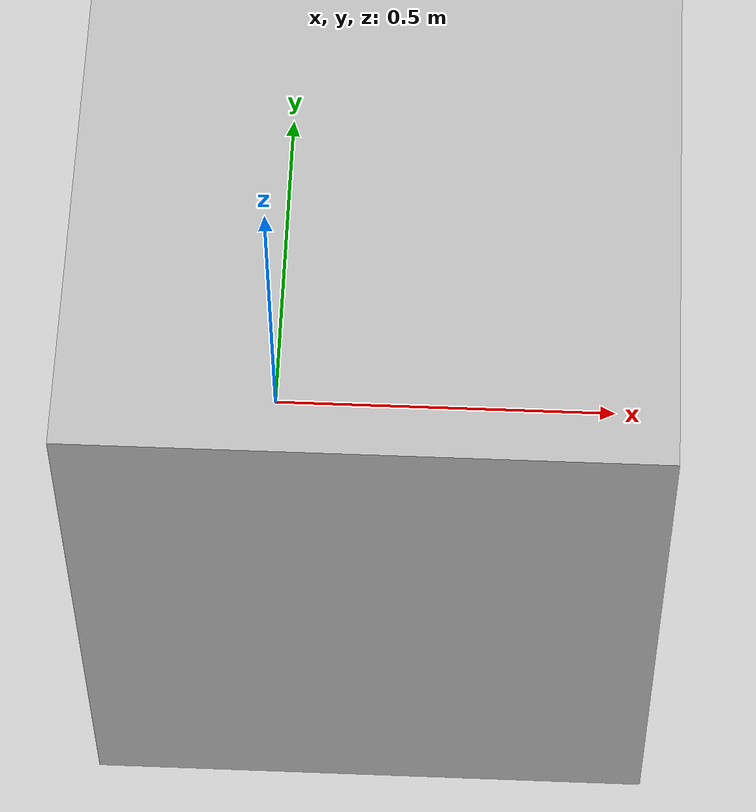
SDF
<?xml version="1.0" ?>
<sdf version="1.6">
  <world name="default">

   <model name="box">
      <static>true</static>
      <pose>0 0 0.0 0 0 0</pose>
      <link name="box_link">
        <inertial>
          <inertia>
            <ixx>1</ixx>
            <ixy>0</ixy>
            <ixz>0</ixz>
            <iyy>1</iyy>
            <iyz>0</iyz>
            <izz>1</izz>
          </inertia>
          <mass>1.0</mass>
        </inertial>
        <collision name="box_collision">
          <geometry>
            <box>
              <size>100 100 1</size>
            </box>
          </geometry>
        </collision>
        <visual name="box_visual">
          <geometry>
            <box>
              <size>100 100 1</size>
            </box>
          </geometry>
        </visual>
      </link>
    </model>

    <model name="ellipsoid">
      <pose>0 -0 0.0 0 0 0</pose>
      <link name="ellipsoid_link">
        <inertial>
          <inertia>
            <ixx>0.068</ixx>
            <ixy>0</ixy>
            <ixz>0</ixz>
            <iyy>0.058</iyy>
            <iyz>0</iyz>
            <izz>0.026</izz>
          </inertia>
          <mass>1.0</mass>
        </inertial>
        <collision name="ellipsoid_collision">
          <geometry>
            <ellipsoid>
              <radii>0.2 0.3 0.5</radii>
            </ellipsoid>
          </geometry>
        </collision>
        <visual name="ellipsoid_visual">
          <geometry>
            <ellipsoid>
              <radii>0.2 0.3 0.5</radii>
            </ellipsoid>
          </geometry>
        </visual>
      </link>
    </model>
  </world>
</sdf>
